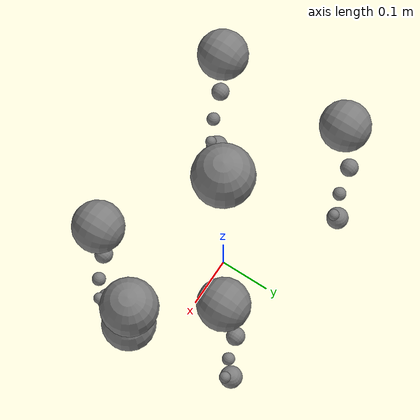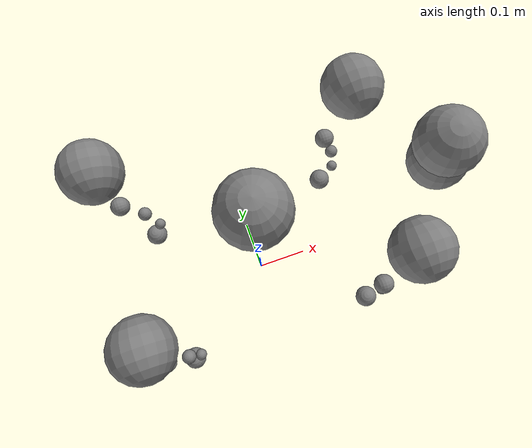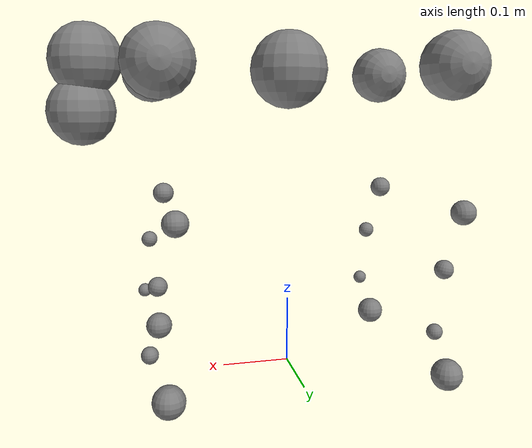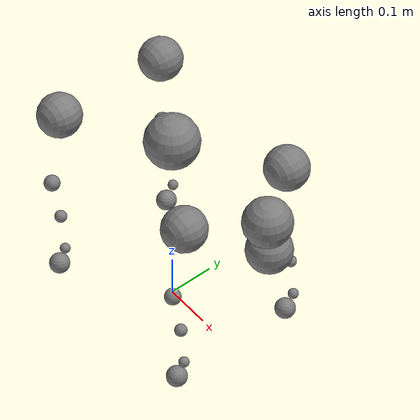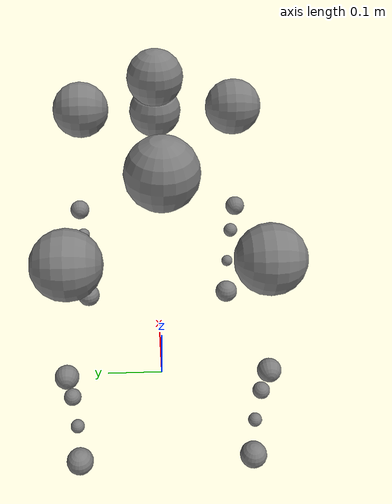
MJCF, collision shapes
<mujoco model="go2">
    <compiler angle="radian" meshdir="../meshes" autolimits="true" />

    <option iterations="2" ls_iterations="5">
        <flag eulerdamp="disable" />
    </option>

    <default>
        <default class="go2">
            <geom condim="1" />
            <joint axis="0 1 0" damping="0.1" armature="0.01" frictionloss="0.2" />
            <motor ctrlrange="-23.7 23.7" />

            <default class="abduction">
                <joint axis="1 0 0" range="-1.0472 1.0472" />
            </default>
            <default class="hip">
                <joint range="-1.5708 3.4907" />
            </default>
            <default class="knee">
                <joint range="-2.7227 -0.83776" />
                <motor ctrlrange="-45.43 45.43" />
            </default>
            <default class="visual">
                <geom type="mesh" contype="0" conaffinity="0" group="2" />
            </default>
            <default class="go2foot">
                <site group="1" pos="-0.002 0 -0.213" />
                <geom rgba="0.231373 0.380392 0.705882 1" />
            </default>
            <default class="collision">
                <geom group="3" />
                <default class="foot">
                    <geom size="0.022" pos="-0.002 0 -0.213" priority="1" solimp="0.9 0.95 0.022"
                        solref="0.01 1" condim="6" friction="1.0 0.02 0.01" />
                </default>
            </default>
        </default>
    </default>

    <visual>
        <global offwidth="1080" offheight="1080" />
    </visual>

    <asset>
        <material name="body_primary" rgba="0.15 0.18 0.22 1" specular="0.4" shininess="0.7" />
        <material name="body_secondary" rgba="1.0 1.0 1.0 1" specular="0.9" shininess="0.9"
            emission="0.0" />
        <material name="metal" rgba="0.0 1.0 1.0 1" specular="0.6" shininess="0.9" />
        <material name="accent" rgba="1.0 1.0 1.0 1" specular="0.5" shininess="0.8" />
        <material name="rubber" rgba="0.05 0.05 0.05 1" specular="0.1" shininess="0.2" />

        <mesh file="go2/base_0.obj" />
        <mesh file="go2/base_1.obj" />
        <mesh file="go2/base_2.obj" />
        <mesh file="go2/base_3.obj" />
        <mesh file="go2/base_4.obj" />
        <mesh file="go2/hip_0.obj" />
        <mesh file="go2/hip_1.obj" />
        <mesh file="go2/thigh_0.obj" />
        <mesh file="go2/thigh_1.obj" />
        <mesh file="go2/thigh_mirror_0.obj" />
        <mesh file="go2/thigh_mirror_1.obj" />
        <mesh file="go2/calf_0.obj" />
        <mesh file="go2/calf_1.obj" />
        <mesh file="go2/calf_mirror_0.obj" />
        <mesh file="go2/calf_mirror_1.obj" />
        <mesh file="go2/foot.obj" />
    </asset>

    <worldbody>
        <light
            name="fill1"
            mode="track"
            type="directional"
            pos="0 0 8"
            dir="0.1 -0.4 -1"
            diffuse="0.4 0.4 0.4"
            ambient="0.2 0.2 0.2"
            specular="0 0 0"
        />
        <light
            name="fill2"
            mode="track"
            type="directional"
            pos="0 0 8"
            dir="-0.1 0.4 -1"
            diffuse="0.4 0.4 0.4"
            ambient="0.2 0.2 0.2"
            specular="0 0 0"
        />
        <body name="base" pos="0 0 0.445" childclass="go2">
            <camera name="track" mode="trackcom" pos="1.509 -1.659 1.214"
                xyaxes="0.723 0.691 -0.000 -0.389 0.407 0.826" />
            <camera name="side" mode="trackcom" pos="0.0 -1.5 0.0"
                xyaxes="1.0 0.0 0.0 0.0 0.0 1.0" />
            <inertial pos="0.021112 0 -0.005366" quat="-0.000543471 0.713435 -0.00173769 0.700719"
                mass="6.921" diaginertia="0.107027 0.0980771 0.0244531" />
            <freejoint name="base" />
            <geom mesh="base_0" material="body_primary" class="visual" />
            <geom mesh="base_1" material="body_primary" class="visual" />
            <geom mesh="base_2" material="accent" class="visual" />
            <geom mesh="base_3" material="accent" class="visual" />
            <geom mesh="base_4" material="body_primary" class="visual" />
            <geom size="0.057 0.04675 0.057" class="collision" />
            <geom size="0.05 0.045" pos="0.285 0 0.01" class="collision" />
            <geom size="0.047" pos="0.293 0 -0.06" class="collision" />
            <site name="imu" pos="-0.02557 0 0.04232" />
            <body name="FL_hip" pos="0.1934 0.0465 0">
                <inertial pos="-0.0054 0.00194 -0.000105" quat="0.497014 0.499245 0.505462 0.498237"
                    mass="0.678" diaginertia="0.00088403 0.000596003 0.000479967" />
                <joint name="FL_hip_joint" class="abduction" />
                <geom mesh="hip_0" material="accent" class="visual" />
                <geom mesh="hip_1" material="body_primary" class="visual" />
                <geom size="0.046 0.02" pos="0 0.08 0" quat="1 1 0 0" class="collision" />
                <body name="FL_thigh" pos="0 0.0955 0">
                    <inertial pos="-0.00374 -0.0223 -0.0327"
                        quat="0.829533 0.0847635 -0.0200632 0.551623" mass="1.152"
                        diaginertia="0.00594973 0.00584149 0.000878787" />
                    <joint name="FL_thigh_joint" class="hip" />
                    <geom mesh="thigh_0" material="body_secondary" class="visual" />
                    <geom mesh="thigh_1" material="body_primary" class="visual" />
                    <geom size="0.017 0.01225 0.017" pos="-0.015 0 -0.1955"
                        quat="0.707107 0 0.707107 0" class="collision" />
                    <body name="FL_calf" pos="0 0 -0.213">
                        <inertial pos="0.00629595 -0.000622121 -0.141417"
                            quat="0.710672 0.00154099 -0.00450087 0.703508" mass="0.241352"
                            diaginertia="0.0014901 0.00146356 5.31397e-05" />
                        <joint name="FL_calf_joint" class="knee" />
                        <geom mesh="calf_0" material="body_primary" class="visual" />
                        <geom mesh="calf_1" material="rubber" class="visual" />
                        <geom size="0.012 0.06" pos="0.008 0 -0.06" quat="0.994493 0 -0.104807 0"
                            class="collision" />
                        <geom size="0.011 0.0325" pos="0.02 0 -0.148" quat="0.999688 0 0.0249974 0"
                            class="collision" />
                        <geom pos="0 0 -0.213" mesh="foot" class="visual" material="rubber" />
                        <geom name="FL" class="foot" />
                        <site name="FL_foot" class="go2foot" />
                    </body>
                </body>
            </body>
            <body name="FR_hip" pos="0.1934 -0.0465 0">
                <inertial pos="-0.0054 -0.00194 -0.000105"
                    quat="0.498237 0.505462 0.499245 0.497014" mass="0.678"
                    diaginertia="0.00088403 0.000596003 0.000479967" />
                <joint name="FR_hip_joint" class="abduction" />
                <geom mesh="hip_0" material="accent" class="visual" quat="4.63268e-05 1 0 0" />
                <geom mesh="hip_1" material="body_primary" class="visual" quat="4.63268e-05 1 0 0" />
                <geom size="0.046 0.02" pos="0 -0.08 0" quat="0.707107 0.707107 0 0"
                    class="collision" />
                <body name="FR_thigh" pos="0 -0.0955 0">
                    <inertial pos="-0.00374 0.0223 -0.0327"
                        quat="0.551623 -0.0200632 0.0847635 0.829533" mass="1.152"
                        diaginertia="0.00594973 0.00584149 0.000878787" />
                    <joint name="FR_thigh_joint" class="hip" />
                    <geom mesh="thigh_mirror_0" material="body_secondary" class="visual" />
                    <geom mesh="thigh_mirror_1" material="body_primary" class="visual" />
                    <geom size="0.017 0.01225 0.017" pos="-0.015 0 -0.1955"
                        quat="0.707107 0 0.707107 0" class="collision" />
                    <body name="FR_calf" pos="0 0 -0.213">
                        <inertial pos="0.00629595 0.000622121 -0.141417"
                            quat="0.703508 -0.00450087 0.00154099 0.710672" mass="0.241352"
                            diaginertia="0.0014901 0.00146356 5.31397e-05" />
                        <joint name="FR_calf_joint" class="knee" />
                        <geom mesh="calf_mirror_0" material="body_primary" class="visual" />
                        <geom mesh="calf_mirror_1" material="rubber" class="visual" />
                        <geom size="0.013 0.06" pos="0.01 0 -0.06" quat="0.995004 0 -0.0998334 0"
                            class="collision" />
                        <geom size="0.011 0.0325" pos="0.02 0 -0.148" quat="0.999688 0 0.0249974 0"
                            class="collision" />
                        <geom pos="0 0 -0.213" mesh="foot" class="visual" material="rubber" />
                        <geom name="FR" class="foot" />
                        <site name="FR_foot" class="go2foot" />
                    </body>
                </body>
            </body>
            <body name="RL_hip" pos="-0.1934 0.0465 0">
                <inertial pos="0.0054 0.00194 -0.000105" quat="0.505462 0.498237 0.497014 0.499245"
                    mass="0.678" diaginertia="0.00088403 0.000596003 0.000479967" />
                <joint name="RL_hip_joint" class="abduction" />
                <geom mesh="hip_0" material="body_primary" class="visual" quat="4.63268e-05 0 1 0" />
                <geom mesh="hip_1" material="body_primary" class="visual" quat="4.63268e-05 0 1 0" />
                <geom size="0.046 0.02" pos="0 0.08 0" quat="0.707107 0.707107 0 0"
                    class="collision" />
                <body name="RL_thigh" pos="0 0.0955 0">
                    <inertial pos="-0.00374 -0.0223 -0.0327"
                        quat="0.829533 0.0847635 -0.0200632 0.551623" mass="1.152"
                        diaginertia="0.00594973 0.00584149 0.000878787" />
                    <joint name="RL_thigh_joint" class="hip" />
                    <geom mesh="thigh_0" material="body_secondary" class="visual" />
                    <geom mesh="thigh_1" material="body_primary" class="visual" />
                    <geom size="0.017 0.01225 0.017" pos="-0.015 0 -0.1955"
                        quat="0.707107 0 0.707107 0" class="collision" />
                    <body name="RL_calf" pos="0 0 -0.213">
                        <inertial pos="0.00629595 -0.000622121 -0.141417"
                            quat="0.710672 0.00154099 -0.00450087 0.703508" mass="0.241352"
                            diaginertia="0.0014901 0.00146356 5.31397e-05" />
                        <joint name="RL_calf_joint" class="knee" />
                        <geom mesh="calf_0" material="body_primary" class="visual" />
                        <geom mesh="calf_1" material="rubber" class="visual" />
                        <geom size="0.013 0.06" pos="0.01 0 -0.06" quat="0.995004 0 -0.0998334 0"
                            class="collision" />
                        <geom size="0.011 0.0325" pos="0.02 0 -0.148" quat="0.999688 0 0.0249974 0"
                            class="collision" />
                        <geom pos="0 0 -0.213" mesh="foot" class="visual" material="rubber" />
                        <geom name="RL" class="foot" />
                        <site name="RL_foot" class="go2foot" />
                    </body>
                </body>
            </body>
            <body name="RR_hip" pos="-0.1934 -0.0465 0">
                <inertial pos="0.0054 -0.00194 -0.000105" quat="0.499245 0.497014 0.498237 0.505462"
                    mass="0.678" diaginertia="0.00088403 0.000596003 0.000479967" />
                <joint name="RR_hip_joint" class="abduction" />
                <geom mesh="hip_0" material="body_primary" class="visual"
                    quat="2.14617e-09 4.63268e-05 4.63268e-05 -1" />
                <geom mesh="hip_1" material="body_primary" class="visual"
                    quat="2.14617e-09 4.63268e-05 4.63268e-05 -1" />
                <geom size="0.046 0.02" pos="0 -0.08 0" quat="0.707107 0.707107 0 0"
                    class="collision" />
                <body name="RR_thigh" pos="0 -0.0955 0">
                    <inertial pos="-0.00374 0.0223 -0.0327"
                        quat="0.551623 -0.0200632 0.0847635 0.829533" mass="1.152"
                        diaginertia="0.00594973 0.00584149 0.000878787" />
                    <joint name="RR_thigh_joint" class="hip" />
                    <geom mesh="thigh_mirror_0" material="body_secondary" class="visual" />
                    <geom mesh="thigh_mirror_1" material="body_primary" class="visual" />
                    <geom size="0.017 0.01225 0.017" pos="-0.015 0 -0.1955"
                        quat="0.707107 0 0.707107 0" class="collision" />
                    <body name="RR_calf" pos="0 0 -0.213">
                        <inertial pos="0.00629595 0.000622121 -0.141417"
                            quat="0.703508 -0.00450087 0.00154099 0.710672" mass="0.241352"
                            diaginertia="0.0014901 0.00146356 5.31397e-05" />
                        <joint name="RR_calf_joint" class="knee" />
                        <geom mesh="calf_mirror_0" material="body_primary" class="visual" />
                        <geom mesh="calf_mirror_1" material="rubber" class="visual" />
                        <geom size="0.013 0.06" pos="0.01 0 -0.06" quat="0.995004 0 -0.0998334 0"
                            class="collision" />
                        <geom size="0.011 0.0325" pos="0.02 0 -0.148" quat="0.999688 0 0.0249974 0"
                            class="collision" />
                        <geom pos="0 0 -0.213" mesh="foot" class="visual" material="rubber" />
                        <geom name="RR" class="foot" />
                        <site name="RR_foot" class="go2foot" />
                    </body>
                </body>
            </body>
        </body>
    </worldbody>

    <actuator>
        <motor class="abduction" name="FL_hip" joint="FL_hip_joint" />
        <motor class="hip" name="FL_thigh" joint="FL_thigh_joint" />
        <motor class="knee" name="FL_calf" joint="FL_calf_joint" />
        <motor class="abduction" name="FR_hip" joint="FR_hip_joint" />
        <motor class="hip" name="FR_thigh" joint="FR_thigh_joint" />
        <motor class="knee" name="FR_calf" joint="FR_calf_joint" />
        <motor class="abduction" name="RL_hip" joint="RL_hip_joint" />
        <motor class="hip" name="RL_thigh" joint="RL_thigh_joint" />
        <motor class="knee" name="RL_calf" joint="RL_calf_joint" />
        <motor class="abduction" name="RR_hip" joint="RR_hip_joint" />
        <motor class="hip" name="RR_thigh" joint="RR_thigh_joint" />
        <motor class="knee" name="RR_calf" joint="RR_calf_joint" />
    </actuator>

    <sensor>
        <jointpos joint="FL_hip_joint" name="abduction_front_left_pos" />
        <jointpos joint="FL_thigh_joint" name="hip_front_left_pos" />
        <jointpos joint="FL_calf_joint" name="knee_front_left_pos" />
        <jointpos joint="RL_hip_joint" name="abduction_hind_left_pos" />
        <jointpos joint="RL_thigh_joint" name="hip_hind_left_pos" />
        <jointpos joint="RL_calf_joint" name="knee_hind_left_pos" />
        <jointpos joint="FR_hip_joint" name="abduction_front_right_pos" />
        <jointpos joint="FR_thigh_joint" name="hip_front_right_pos" />
        <jointpos joint="FR_calf_joint" name="knee_front_right_pos" />
        <jointpos joint="RR_hip_joint" name="abduction_hind_right_pos" />
        <jointpos joint="RR_thigh_joint" name="hip_hind_right_pos" />
        <jointpos joint="RR_calf_joint" name="knee_hind_right_pos" />
        <jointvel joint="FL_hip_joint" name="abduction_front_left_vel" />
        <jointvel joint="FL_thigh_joint" name="hip_front_left_vel" />
        <jointvel joint="FL_calf_joint" name="knee_front_left_vel" />
        <jointvel joint="RL_hip_joint" name="abduction_hind_left_vel" />
        <jointvel joint="RL_thigh_joint" name="hip_hind_left_vel" />
        <jointvel joint="RL_calf_joint" name="knee_hind_left_vel" />
        <jointvel joint="FR_hip_joint" name="abduction_front_right_vel" />
        <jointvel joint="FR_thigh_joint" name="hip_front_right_vel" />
        <jointvel joint="FR_calf_joint" name="knee_front_right_vel" />
        <jointvel joint="RR_hip_joint" name="abduction_hind_right_vel" />
        <jointvel joint="RR_thigh_joint" name="hip_hind_right_vel" />
        <jointvel joint="RR_calf_joint" name="knee_hind_right_vel" />
        <gyro site="imu" name="gyro" />
        <accelerometer site="imu" name="accelerometer" />
        <framequat objtype="site" objname="imu" name="orientation" />
        <framepos objtype="site" objname="imu" name="global_position" />
        <framelinvel objtype="site" objname="imu" name="global_linvel" />
        <frameangvel objtype="site" objname="imu" name="global_angvel" />
    </sensor>

    <keyframe>
        <key name="home" qpos="0 0 0.27 1 0 0 0 0 0.9 -1.8 0 0.9 -1.8 0 0.9 -1.8 0 0.9 -1.8" />
    </keyframe>
</mujoco>
